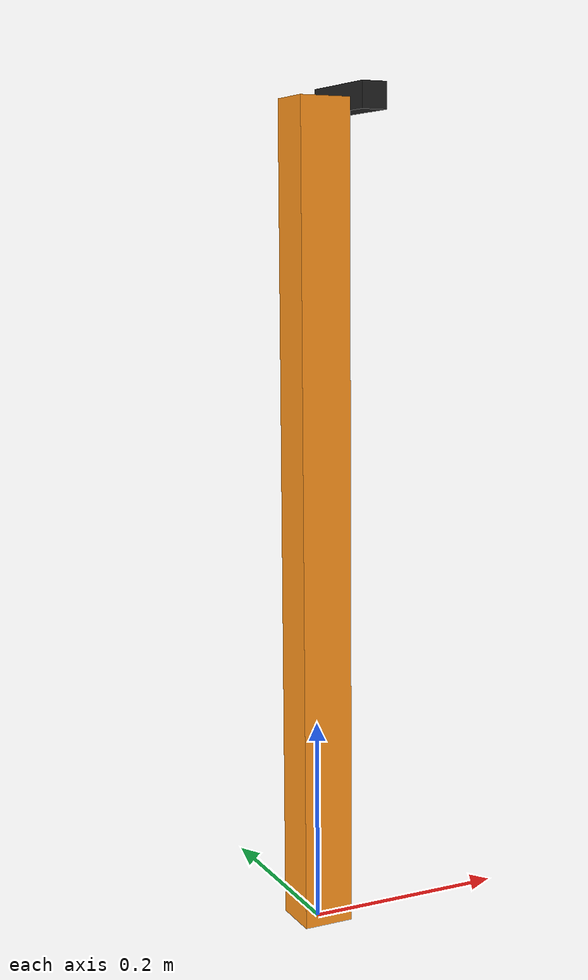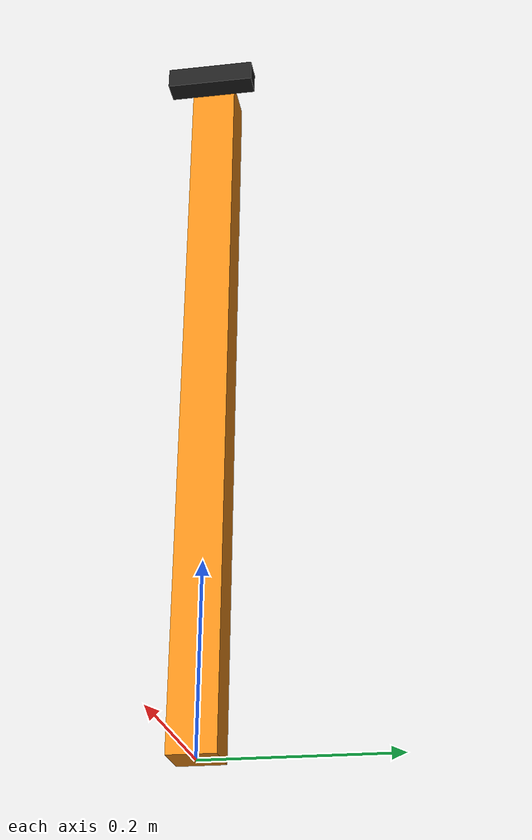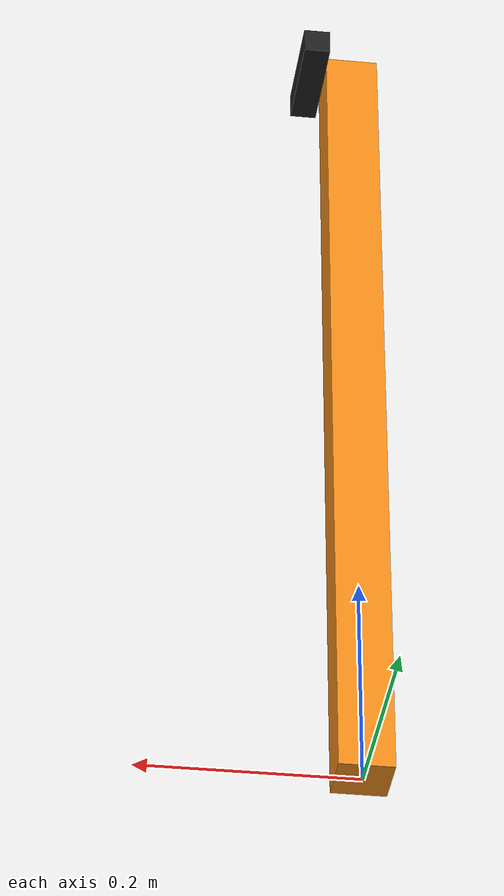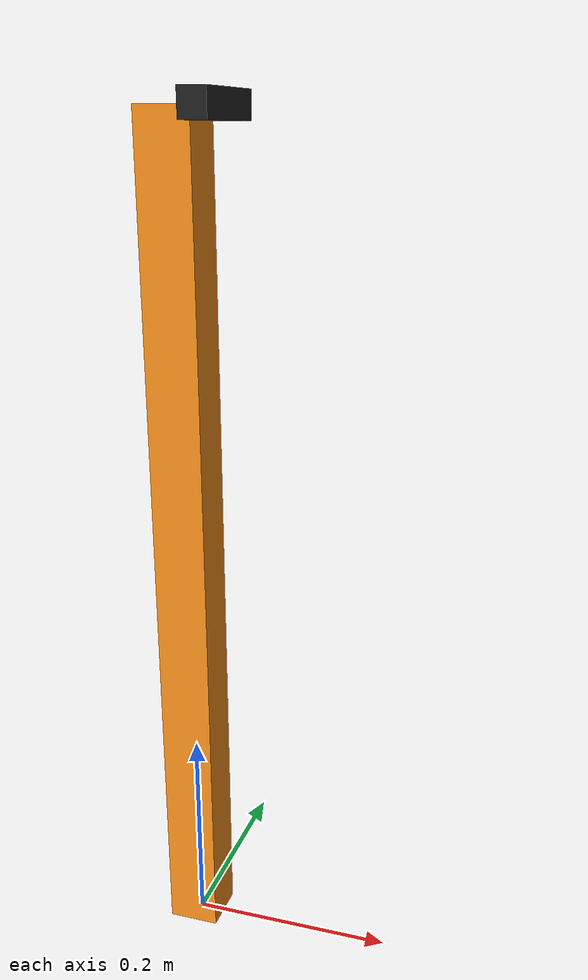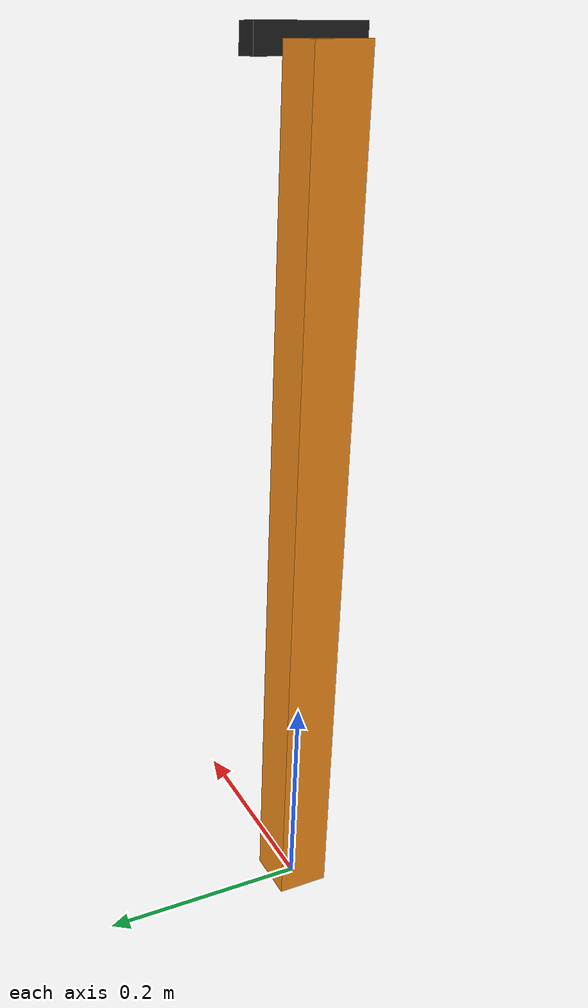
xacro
<?xml version="1.0"?>
<robot name="stereo_camera_setup" xmlns:xacro="http://www.ros.org/wiki/xacro">
<xacro:macro name="camera_setup" params="parent">
	<gazebo reference="stereo_left_camera">
    <sensor type="multicamera" name="stereo_camera">
      <update_rate>30.0</update_rate>
      <camera name="left">
        <horizontal_fov>1.3962634</horizontal_fov>
        <image>
          <width>800</width>
          <height>800</height>
          <format>R8G8B8</format>
        </image>
        <clip>
          <near>0.02</near>
          <far>300</far>
        </clip>
        <noise>
          <type>gaussian</type>
          <mean>0.0</mean>
          <stddev>0.007</stddev>
        </noise>
      </camera>
      <camera name="right">
        <pose>0 -0.07 0 0 0 0</pose>
        <horizontal_fov>1.3962634</horizontal_fov>
        <image>
          <width>800</width>
          <height>800</height>
          <format>R8G8B8</format>
        </image>
        <clip>
          <near>0.02</near>
          <far>300</far>
        </clip>
        <noise>
          <type>gaussian</type>
          <mean>0.0</mean>
          <stddev>0.007</stddev>
        </noise>
      </camera>
      <plugin name="stereo_camera_controller" filename="libgazebo_ros_multicamera.so">
        <alwaysOn>true</alwaysOn>
        <updateRate>0.0</updateRate>
        <cameraName>stereo</cameraName>
        <imageTopicName>image_raw</imageTopicName>
        <cameraInfoTopicName>camera_info</cameraInfoTopicName>
        <frameName>stereo_left_camera</frameName>
        <hackBaseline>0.07</hackBaseline>
        <distortionK1>0.0</distortionK1>
        <distortionK2>0.0</distortionK2>
        <distortionK3>0.0</distortionK3>
        <distortionT1>0.0</distortionT1>
        <distortionT2>0.0</distortionT2>
      </plugin>
    </sensor>
  </gazebo>

<gazebo reference="stereo_vertical_link">
    <material>Gazebo/Orange</material>
  </gazebo>

  <gazebo reference="stereo_camera">
    <material>Gazebo/Black</material>
  </gazebo>

  <link name="stereo_base"/>

  <joint name="stereo_base_world" type="fixed">
		<origin xyz="0.0 0.0 0.0" rpy="0 0 0"/>
		<parent link="${parent}"/>
		<child link="stereo_base"/>
	</joint>

	<link name="stereo_vertical_link">
		<visual>
			<origin xyz="0 0 0" rpy="0 0 0"/>
			<geometry>
				<box size="0.05 0.05 0.8"/>
			</geometry>
		</visual>
		<collision>
			<origin xyz="0 0 0" rpy="0 0 0"/>
			<geometry>
				<box size="0.05 0.05 0.8"/>
			</geometry>
		</collision>
		<inertial>
			<origin xyz="0 0 0" rpy="0 0 0"/>
			<mass value="10"/>
			<inertia ixx="0.5354166666666668" ixy="0.0" ixz="0.0" iyy="0.5354166666666668" iyz="0.0" izz="0.0041666666666666675" />
		</inertial>
	</link>

	<joint name="stereo_base_vertical" type="fixed">
		<origin xyz="0.0 0.0 0.4" rpy="0 0 0"/>
		<parent link="stereo_base"/>
		<child link="stereo_vertical_link"/>
	</joint>

	<link name="stereo_camera">
		<visual>
			<origin xyz="0.0 0.0 0.0" rpy="0 0 0"/>
			<geometry>
				<box size="0.025 0.1 0.025"/>
			</geometry>
		</visual>
		<collision>
			<origin xyz="0 0 0" rpy="0 0 0"/>
			<geometry>
				<box size="0.025 0.1 0.025"/>
			</geometry>
		</collision>
		<inertial>
			<origin xyz="0 0 0" rpy="0 0 0"/>
			<mass value="0.5"/>
			<inertia ixx="0.0008333333333333335" ixy="0.0" ixz="0.0" iyy="0.042083333333333334" iyz="0.0" izz="0.042083333333333334" />
		</inertial>
	</link>
	<joint name="stereo_camera_camera_attachment" type="fixed">
		<origin xyz="0.0375 0.0 0.4" rpy="0 0 0"/>
		<parent link="stereo_vertical_link"/>
		<child link="stereo_camera"/>
	</joint>

	<link name="stereo_left_camera"/>

	<joint name="stereo_left_camera_frame" type="fixed">
		<origin xyz="0.0 0.035 0.0" rpy="0 0 0"/>
		<parent link="stereo_camera"/>
		<child link="stereo_left_camera"/>
	</joint>
</xacro:macro>

<!--links of the setup with the world frame-->
<link name="world" />
<xacro:camera_setup parent="world" />
</robot>
